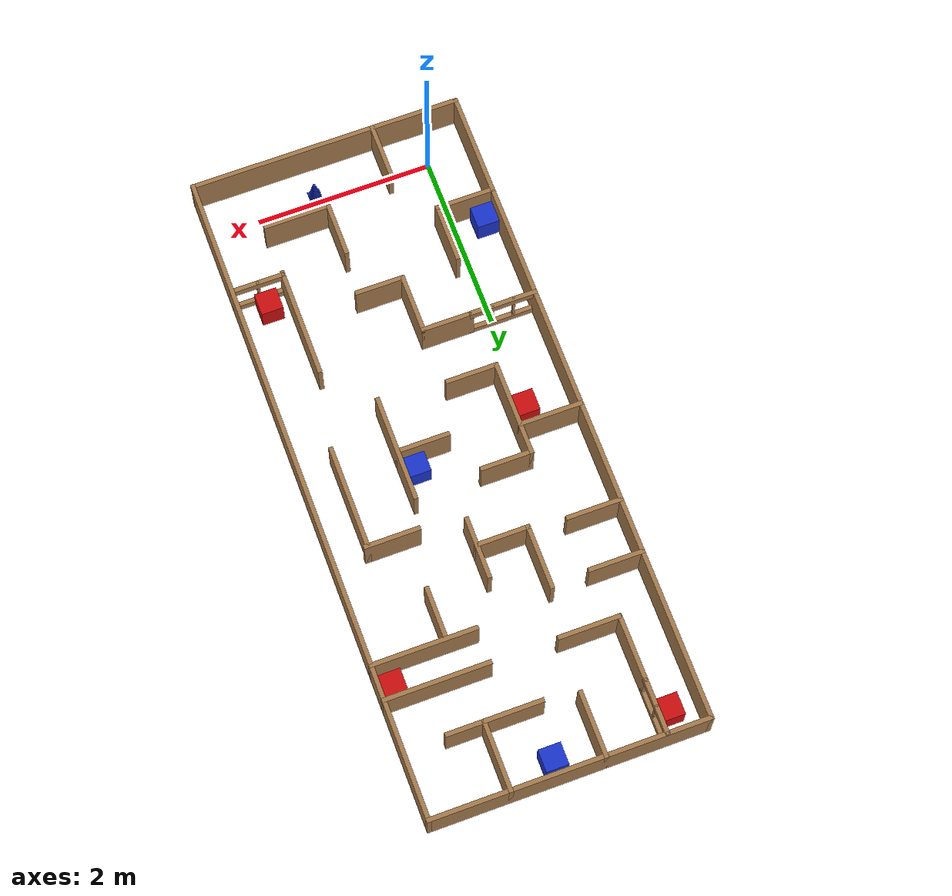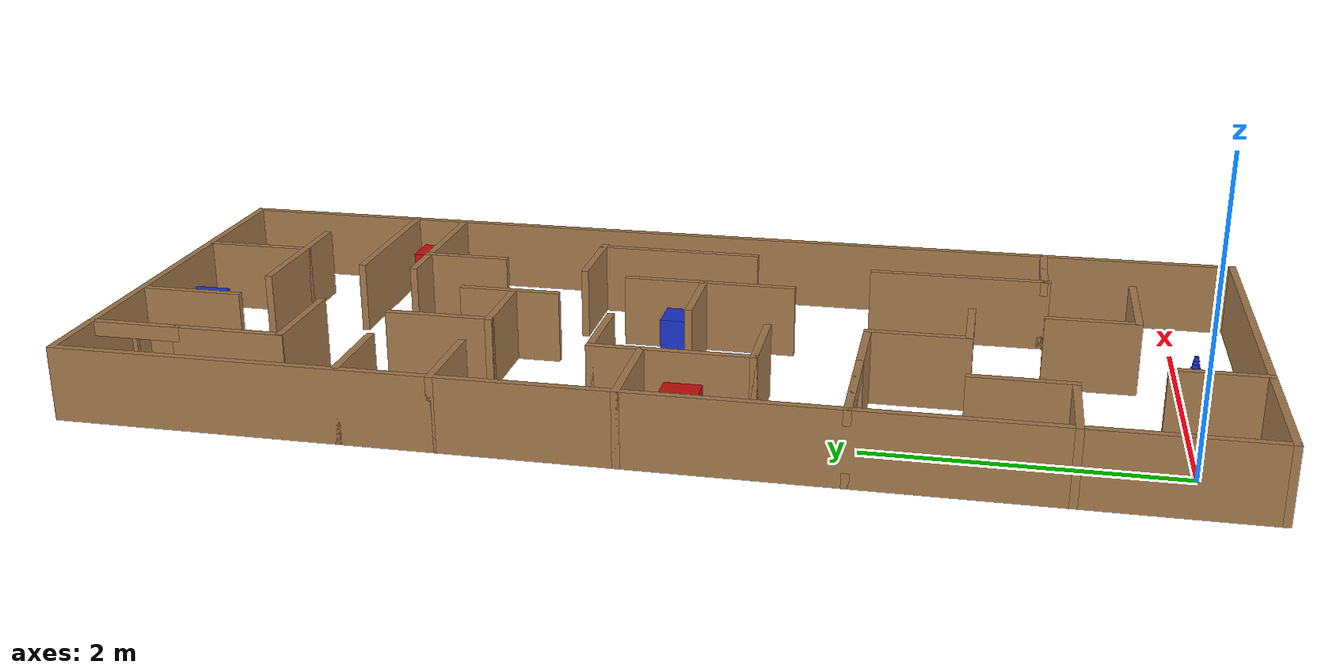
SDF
<sdf version="1.5">
 <world name="tars_qualy_real">
  <include><uri>model://sun</uri></include>
  <model name="paredes_borde">
   <static>true</static>
   <link name="pared_1">
    <pose>1.0500 -0.4300 0.2500 0 0 0</pose>
    <collision name="collision"><geometry><box><size>3.1100 0.0500 0.5000</size></box></geometry></collision>
    <visual name="visual">
     <geometry><box><size>3.1100 0.0500 0.5000</size></box></geometry>
     <material><ambient>0.65 0.48 0.3 1</ambient><diffuse>0.65 0.48 0.3 1</diffuse></material>
    </visual>
   </link>
   <link name="pared_2">
    <pose>1.0500 7.0500 0.2500 0 0 0</pose>
    <collision name="collision"><geometry><box><size>3.1100 0.0500 0.5000</size></box></geometry></collision>
    <visual name="visual">
     <geometry><box><size>3.1100 0.0500 0.5000</size></box></geometry>
     <material><ambient>0.65 0.48 0.3 1</ambient><diffuse>0.65 0.48 0.3 1</diffuse></material>
    </visual>
   </link>
   <link name="pared_3">
    <pose>-0.4800 3.3100 0.2500 0 0 0</pose>
    <collision name="collision"><geometry><box><size>0.0500 7.5300 0.5000</size></box></geometry></collision>
    <visual name="visual">
     <geometry><box><size>0.0500 7.5300 0.5000</size></box></geometry>
     <material><ambient>0.65 0.48 0.3 1</ambient><diffuse>0.65 0.48 0.3 1</diffuse></material>
    </visual>
   </link>
   <link name="pared_4">
    <pose>2.5800 3.3100 0.2500 0 0 0</pose>
    <collision name="collision"><geometry><box><size>0.0500 7.5300 0.5000</size></box></geometry></collision>
    <visual name="visual">
     <geometry><box><size>0.0500 7.5300 0.5000</size></box></geometry>
     <material><ambient>0.65 0.48 0.3 1</ambient><diffuse>0.65 0.48 0.3 1</diffuse></material>
    </visual>
   </link>
   <link name="pared_5">
    <pose>0.5000 -0.1400 0.2500 0 0 0</pose>
    <collision name="collision"><geometry><box><size>0.0500 0.6300 0.5000</size></box></geometry></collision>
    <visual name="visual">
     <geometry><box><size>0.0500 0.6300 0.5000</size></box></geometry>
     <material><ambient>0.65 0.48 0.3 1</ambient><diffuse>0.65 0.48 0.3 1</diffuse></material>
    </visual>
   </link>
   <link name="pared_6">
    <pose>1.2700 0.5900 0.2500 0 0 0</pose>
    <collision name="collision"><geometry><box><size>0.0500 0.6300 0.5000</size></box></geometry></collision>
    <visual name="visual">
     <geometry><box><size>0.0500 0.6300 0.5000</size></box></geometry>
     <material><ambient>0.65 0.48 0.3 1</ambient><diffuse>0.65 0.48 0.3 1</diffuse></material>
    </visual>
   </link>
   <link name="pared_7">
    <pose>1.6300 0.3000 0.2500 0 0 0</pose>
    <collision name="collision"><geometry><box><size>0.7700 0.0500 0.5000</size></box></geometry></collision>
    <visual name="visual">
     <geometry><box><size>0.7700 0.0500 0.5000</size></box></geometry>
     <material><ambient>0.65 0.48 0.3 1</ambient><diffuse>0.65 0.48 0.3 1</diffuse></material>
    </visual>
   </link>
   <link name="pared_8">
    <pose>2.0000 1.4850 0.2500 0 0 0</pose>
    <collision name="collision"><geometry><box><size>0.0500 1.2600 0.5000</size></box></geometry></collision>
    <visual name="visual">
     <geometry><box><size>0.0500 1.2600 0.5000</size></box></geometry>
     <material><ambient>0.65 0.48 0.3 1</ambient><diffuse>0.65 0.48 0.3 1</diffuse></material>
    </visual>
   </link>
   <link name="pared_9_zocalo">
    <pose>2.2900 0.9000 0.0500 0 0 0</pose>
    <collision name="collision"><geometry><box><size>0.6300 0.0500 0.1000</size></box></geometry></collision>
    <visual name="visual">
     <geometry><box><size>0.6300 0.0500 0.1000</size></box></geometry>
     <material><ambient>0.65 0.48 0.3 1</ambient><diffuse>0.65 0.48 0.3 1</diffuse></material>
    </visual>
   </link>
   <link name="pared_10_poste">
    <pose>2.0000 0.9000 0.2500 0 0 0</pose>
    <collision name="collision"><geometry><box><size>0.0300 0.0300 0.5000</size></box></geometry></collision>
    <visual name="visual">
     <geometry><box><size>0.0300 0.0300 0.5000</size></box></geometry>
     <material><ambient>0.65 0.48 0.3 1</ambient><diffuse>0.65 0.48 0.3 1</diffuse></material>
    </visual>
   </link>
   <link name="pared_11_poste">
    <pose>2.2900 0.9000 0.2500 0 0 0</pose>
    <collision name="collision"><geometry><box><size>0.0300 0.0300 0.5000</size></box></geometry></collision>
    <visual name="visual">
     <geometry><box><size>0.0300 0.0300 0.5000</size></box></geometry>
     <material><ambient>0.65 0.48 0.3 1</ambient><diffuse>0.65 0.48 0.3 1</diffuse></material>
    </visual>
   </link>
   <link name="pared_12_poste">
    <pose>2.5800 0.9000 0.2500 0 0 0</pose>
    <collision name="collision"><geometry><box><size>0.0300 0.0300 0.5000</size></box></geometry></collision>
    <visual name="visual">
     <geometry><box><size>0.0300 0.0300 0.5000</size></box></geometry>
     <material><ambient>0.65 0.48 0.3 1</ambient><diffuse>0.65 0.48 0.3 1</diffuse></material>
    </visual>
   </link>
   <link name="pared_13_dintel">
    <pose>2.2900 0.9000 0.4500 0 0 0</pose>
    <collision name="collision"><geometry><box><size>0.6300 0.0500 0.1000</size></box></geometry></collision>
    <visual name="visual">
     <geometry><box><size>0.6300 0.0500 0.1000</size></box></geometry>
     <material><ambient>0.65 0.48 0.3 1</ambient><diffuse>0.65 0.48 0.3 1</diffuse></material>
    </visual>
   </link>
   <link name="pared_14">
    <pose>-0.1600 0.7300 0.2500 0 0 0</pose>
    <collision name="collision"><geometry><box><size>0.6900 0.0500 0.5000</size></box></geometry></collision>
    <visual name="visual">
     <geometry><box><size>0.6900 0.0500 0.5000</size></box></geometry>
     <material><ambient>0.65 0.48 0.3 1</ambient><diffuse>0.65 0.48 0.3 1</diffuse></material>
    </visual>
   </link>
   <link name="pared_15">
    <pose>0.1600 1.0450 0.2500 0 0 0</pose>
    <collision name="collision"><geometry><box><size>0.0500 0.6800 0.5000</size></box></geometry></collision>
    <visual name="visual">
     <geometry><box><size>0.0500 0.6800 0.5000</size></box></geometry>
     <material><ambient>0.65 0.48 0.3 1</ambient><diffuse>0.65 0.48 0.3 1</diffuse></material>
    </visual>
   </link>
   <link name="pared_16_zocalo">
    <pose>-0.1150 2.0300 0.0500 0 0 0</pose>
    <collision name="collision"><geometry><box><size>0.7800 0.0500 0.1000</size></box></geometry></collision>
    <visual name="visual">
     <geometry><box><size>0.7800 0.0500 0.1000</size></box></geometry>
     <material><ambient>0.65 0.48 0.3 1</ambient><diffuse>0.65 0.48 0.3 1</diffuse></material>
    </visual>
   </link>
   <link name="pared_17_poste">
    <pose>-0.4800 2.0300 0.2500 0 0 0</pose>
    <collision name="collision"><geometry><box><size>0.0300 0.0300 0.5000</size></box></geometry></collision>
    <visual name="visual">
     <geometry><box><size>0.0300 0.0300 0.5000</size></box></geometry>
     <material><ambient>0.65 0.48 0.3 1</ambient><diffuse>0.65 0.48 0.3 1</diffuse></material>
    </visual>
   </link>
   <link name="pared_18_poste">
    <pose>-0.2367 2.0300 0.2500 0 0 0</pose>
    <collision name="collision"><geometry><box><size>0.0300 0.0300 0.5000</size></box></geometry></collision>
    <visual name="visual">
     <geometry><box><size>0.0300 0.0300 0.5000</size></box></geometry>
     <material><ambient>0.65 0.48 0.3 1</ambient><diffuse>0.65 0.48 0.3 1</diffuse></material>
    </visual>
   </link>
   <link name="pared_19_poste">
    <pose>0.0067 2.0300 0.2500 0 0 0</pose>
    <collision name="collision"><geometry><box><size>0.0300 0.0300 0.5000</size></box></geometry></collision>
    <visual name="visual">
     <geometry><box><size>0.0300 0.0300 0.5000</size></box></geometry>
     <material><ambient>0.65 0.48 0.3 1</ambient><diffuse>0.65 0.48 0.3 1</diffuse></material>
    </visual>
   </link>
   <link name="pared_20_poste">
    <pose>0.2500 2.0300 0.2500 0 0 0</pose>
    <collision name="collision"><geometry><box><size>0.0300 0.0300 0.5000</size></box></geometry></collision>
    <visual name="visual">
     <geometry><box><size>0.0300 0.0300 0.5000</size></box></geometry>
     <material><ambient>0.65 0.48 0.3 1</ambient><diffuse>0.65 0.48 0.3 1</diffuse></material>
    </visual>
   </link>
   <link name="pared_21_dintel">
    <pose>-0.1150 2.0300 0.4500 0 0 0</pose>
    <collision name="collision"><geometry><box><size>0.7800 0.0500 0.1000</size></box></geometry></collision>
    <visual name="visual">
     <geometry><box><size>0.7800 0.0500 0.1000</size></box></geometry>
     <material><ambient>0.65 0.48 0.3 1</ambient><diffuse>0.65 0.48 0.3 1</diffuse></material>
    </visual>
   </link>
   <link name="pared_22">
    <pose>0.5250 2.0300 0.2500 0 0 0</pose>
    <collision name="collision"><geometry><box><size>0.6000 0.0500 0.5000</size></box></geometry></collision>
    <visual name="visual">
     <geometry><box><size>0.6000 0.0500 0.5000</size></box></geometry>
     <material><ambient>0.65 0.48 0.3 1</ambient><diffuse>0.65 0.48 0.3 1</diffuse></material>
    </visual>
   </link>
   <link name="pared_23">
    <pose>0.8000 1.7050 0.2500 0 0 0</pose>
    <collision name="collision"><geometry><box><size>0.0500 0.7000 0.5000</size></box></geometry></collision>
    <visual name="visual">
     <geometry><box><size>0.0500 0.7000 0.5000</size></box></geometry>
     <material><ambient>0.65 0.48 0.3 1</ambient><diffuse>0.65 0.48 0.3 1</diffuse></material>
    </visual>
   </link>
   <link name="pared_24">
    <pose>1.0600 1.3800 0.2500 0 0 0</pose>
    <collision name="collision"><geometry><box><size>0.5700 0.0500 0.5000</size></box></geometry></collision>
    <visual name="visual">
     <geometry><box><size>0.5700 0.0500 0.5000</size></box></geometry>
     <material><ambient>0.65 0.48 0.3 1</ambient><diffuse>0.65 0.48 0.3 1</diffuse></material>
    </visual>
   </link>
   <link name="pared_25">
    <pose>0.2100 3.2050 0.2500 0 0 0</pose>
    <collision name="collision"><geometry><box><size>0.0500 1.1000 0.5000</size></box></geometry></collision>
    <visual name="visual">
     <geometry><box><size>0.0500 1.1000 0.5000</size></box></geometry>
     <material><ambient>0.65 0.48 0.3 1</ambient><diffuse>0.65 0.48 0.3 1</diffuse></material>
    </visual>
   </link>
   <link name="pared_26">
    <pose>0.4850 3.7300 0.2500 0 0 0</pose>
    <collision name="collision"><geometry><box><size>0.6000 0.0500 0.5000</size></box></geometry></collision>
    <visual name="visual">
     <geometry><box><size>0.6000 0.0500 0.5000</size></box></geometry>
     <material><ambient>0.65 0.48 0.3 1</ambient><diffuse>0.65 0.48 0.3 1</diffuse></material>
    </visual>
   </link>
   <link name="pared_27">
    <pose>0.4850 2.6800 0.2500 0 0 0</pose>
    <collision name="collision"><geometry><box><size>0.6000 0.0500 0.5000</size></box></geometry></collision>
    <visual name="visual">
     <geometry><box><size>0.6000 0.0500 0.5000</size></box></geometry>
     <material><ambient>0.65 0.48 0.3 1</ambient><diffuse>0.65 0.48 0.3 1</diffuse></material>
    </visual>
   </link>
   <link name="pared_28">
    <pose>1.5300 3.2000 0.2500 0 0 0</pose>
    <collision name="collision"><geometry><box><size>0.0500 1.2100 0.5000</size></box></geometry></collision>
    <visual name="visual">
     <geometry><box><size>0.0500 1.2100 0.5000</size></box></geometry>
     <material><ambient>0.65 0.48 0.3 1</ambient><diffuse>0.65 0.48 0.3 1</diffuse></material>
    </visual>
   </link>
   <link name="pared_29">
    <pose>1.2500 3.2400 0.2500 0 0 0</pose>
    <collision name="collision"><geometry><box><size>0.6100 0.0500 0.5000</size></box></geometry></collision>
    <visual name="visual">
     <geometry><box><size>0.6100 0.0500 0.5000</size></box></geometry>
     <material><ambient>0.65 0.48 0.3 1</ambient><diffuse>0.65 0.48 0.3 1</diffuse></material>
    </visual>
   </link>
   <link name="pared_30">
    <pose>1.9100 4.1200 0.2500 0 0 0</pose>
    <collision name="collision"><geometry><box><size>0.6300 0.0500 0.5000</size></box></geometry></collision>
    <visual name="visual">
     <geometry><box><size>0.6300 0.0500 0.5000</size></box></geometry>
     <material><ambient>0.65 0.48 0.3 1</ambient><diffuse>0.65 0.48 0.3 1</diffuse></material>
    </visual>
   </link>
   <link name="pared_31">
    <pose>2.1800 3.5500 0.2500 0 0 0</pose>
    <collision name="collision"><geometry><box><size>0.0500 1.1900 0.5000</size></box></geometry></collision>
    <visual name="visual">
     <geometry><box><size>0.0500 1.1900 0.5000</size></box></geometry>
     <material><ambient>0.65 0.48 0.3 1</ambient><diffuse>0.65 0.48 0.3 1</diffuse></material>
    </visual>
   </link>
   <link name="pared_32">
    <pose>-0.1850 4.5500 0.2500 0 0 0</pose>
    <collision name="collision"><geometry><box><size>0.6400 0.0500 0.5000</size></box></geometry></collision>
    <visual name="visual">
     <geometry><box><size>0.6400 0.0500 0.5000</size></box></geometry>
     <material><ambient>0.65 0.48 0.3 1</ambient><diffuse>0.65 0.48 0.3 1</diffuse></material>
    </visual>
   </link>
   <link name="pared_33">
    <pose>0.5400 4.8450 0.2500 0 0 0</pose>
    <collision name="collision"><geometry><box><size>0.0500 0.7400 0.5000</size></box></geometry></collision>
    <visual name="visual">
     <geometry><box><size>0.0500 0.7400 0.5000</size></box></geometry>
     <material><ambient>0.65 0.48 0.3 1</ambient><diffuse>0.65 0.48 0.3 1</diffuse></material>
    </visual>
   </link>
   <link name="pared_34">
    <pose>1.1100 4.5300 0.2500 0 0 0</pose>
    <collision name="collision"><geometry><box><size>0.0500 0.7100 0.5000</size></box></geometry></collision>
    <visual name="visual">
     <geometry><box><size>0.0500 0.7100 0.5000</size></box></geometry>
     <material><ambient>0.65 0.48 0.3 1</ambient><diffuse>0.65 0.48 0.3 1</diffuse></material>
    </visual>
   </link>
   <link name="pared_35">
    <pose>0.8250 4.5000 0.2500 0 0 0</pose>
    <collision name="collision"><geometry><box><size>0.6200 0.0500 0.5000</size></box></geometry></collision>
    <visual name="visual">
     <geometry><box><size>0.6200 0.0500 0.5000</size></box></geometry>
     <material><ambient>0.65 0.48 0.3 1</ambient><diffuse>0.65 0.48 0.3 1</diffuse></material>
    </visual>
   </link>
   <link name="pared_36">
    <pose>-0.1900 5.1600 0.2500 0 0 0</pose>
    <collision name="collision"><geometry><box><size>0.6300 0.0500 0.5000</size></box></geometry></collision>
    <visual name="visual">
     <geometry><box><size>0.6300 0.0500 0.5000</size></box></geometry>
     <material><ambient>0.65 0.48 0.3 1</ambient><diffuse>0.65 0.48 0.3 1</diffuse></material>
    </visual>
   </link>
   <link name="pared_37">
    <pose>0.3350 5.7300 0.2500 0 0 0</pose>
    <collision name="collision"><geometry><box><size>0.7000 0.0500 0.5000</size></box></geometry></collision>
    <visual name="visual">
     <geometry><box><size>0.7000 0.0500 0.5000</size></box></geometry>
     <material><ambient>0.65 0.48 0.3 1</ambient><diffuse>0.65 0.48 0.3 1</diffuse></material>
    </visual>
   </link>
   <link name="pared_38">
    <pose>0.6700 6.7000 0.2500 0 0 0</pose>
    <collision name="collision"><geometry><box><size>0.0500 0.7500 0.5000</size></box></geometry></collision>
    <visual name="visual">
     <geometry><box><size>0.0500 0.7500 0.5000</size></box></geometry>
     <material><ambient>0.65 0.48 0.3 1</ambient><diffuse>0.65 0.48 0.3 1</diffuse></material>
    </visual>
   </link>
   <link name="pared_39">
    <pose>1.5850 6.2900 0.2500 0 0 0</pose>
    <collision name="collision"><geometry><box><size>1.0800 0.0500 0.5000</size></box></geometry></collision>
    <visual name="visual">
     <geometry><box><size>1.0800 0.0500 0.5000</size></box></geometry>
     <material><ambient>0.65 0.48 0.3 1</ambient><diffuse>0.65 0.48 0.3 1</diffuse></material>
    </visual>
   </link>
   <link name="pared_40">
    <pose>1.7000 6.6700 0.2500 0 0 0</pose>
    <collision name="collision"><geometry><box><size>0.0500 0.8100 0.5000</size></box></geometry></collision>
    <visual name="visual">
     <geometry><box><size>0.0500 0.8100 0.5000</size></box></geometry>
     <material><ambient>0.65 0.48 0.3 1</ambient><diffuse>0.65 0.48 0.3 1</diffuse></material>
    </visual>
   </link>
   <link name="pared_41">
    <pose>0.0000 6.0900 0.2500 0 0 0</pose>
    <collision name="collision"><geometry><box><size>0.0500 0.7700 0.5000</size></box></geometry></collision>
    <visual name="visual">
     <geometry><box><size>0.0500 0.7700 0.5000</size></box></geometry>
     <material><ambient>0.65 0.48 0.3 1</ambient><diffuse>0.65 0.48 0.3 1</diffuse></material>
    </visual>
   </link>
   <link name="pared_42_zocalo">
    <pose>0.0000 6.7500 0.0500 0 0 0</pose>
    <collision name="collision"><geometry><box><size>0.0500 0.6500 0.1000</size></box></geometry></collision>
    <visual name="visual">
     <geometry><box><size>0.0500 0.6500 0.1000</size></box></geometry>
     <material><ambient>0.65 0.48 0.3 1</ambient><diffuse>0.65 0.48 0.3 1</diffuse></material>
    </visual>
   </link>
   <link name="pared_43_poste">
    <pose>0.0000 6.4500 0.2500 0 0 0</pose>
    <collision name="collision"><geometry><box><size>0.0300 0.0300 0.5000</size></box></geometry></collision>
    <visual name="visual">
     <geometry><box><size>0.0300 0.0300 0.5000</size></box></geometry>
     <material><ambient>0.65 0.48 0.3 1</ambient><diffuse>0.65 0.48 0.3 1</diffuse></material>
    </visual>
   </link>
   <link name="pared_44_poste">
    <pose>0.0000 6.7500 0.2500 0 0 0</pose>
    <collision name="collision"><geometry><box><size>0.0300 0.0300 0.5000</size></box></geometry></collision>
    <visual name="visual">
     <geometry><box><size>0.0300 0.0300 0.5000</size></box></geometry>
     <material><ambient>0.65 0.48 0.3 1</ambient><diffuse>0.65 0.48 0.3 1</diffuse></material>
    </visual>
   </link>
   <link name="pared_45_poste">
    <pose>0.0000 7.0500 0.2500 0 0 0</pose>
    <collision name="collision"><geometry><box><size>0.0300 0.0300 0.5000</size></box></geometry></collision>
    <visual name="visual">
     <geometry><box><size>0.0300 0.0300 0.5000</size></box></geometry>
     <material><ambient>0.65 0.48 0.3 1</ambient><diffuse>0.65 0.48 0.3 1</diffuse></material>
    </visual>
   </link>
   <link name="pared_46_dintel">
    <pose>0.0000 6.7500 0.4500 0 0 0</pose>
    <collision name="collision"><geometry><box><size>0.0500 0.6500 0.1000</size></box></geometry></collision>
    <visual name="visual">
     <geometry><box><size>0.0500 0.6500 0.1000</size></box></geometry>
     <material><ambient>0.65 0.48 0.3 1</ambient><diffuse>0.65 0.48 0.3 1</diffuse></material>
    </visual>
   </link>
   <link name="pared_47">
    <pose>-0.1350 3.4000 0.2500 0 0 0</pose>
    <collision name="collision"><geometry><box><size>0.7400 0.0500 0.5000</size></box></geometry></collision>
    <visual name="visual">
     <geometry><box><size>0.7400 0.0500 0.5000</size></box></geometry>
     <material><ambient>0.65 0.48 0.3 1</ambient><diffuse>0.65 0.48 0.3 1</diffuse></material>
    </visual>
   </link>
   <link name="pared_48">
    <pose>2.0050 5.7300 0.2500 0 0 0</pose>
    <collision name="collision"><geometry><box><size>1.2000 0.0500 0.5000</size></box></geometry></collision>
    <visual name="visual">
     <geometry><box><size>1.2000 0.0500 0.5000</size></box></geometry>
     <material><ambient>0.65 0.48 0.3 1</ambient><diffuse>0.65 0.48 0.3 1</diffuse></material>
    </visual>
   </link>
   <link name="pared_49">
    <pose>2.0050 5.3400 0.2500 0 0 0</pose>
    <collision name="collision"><geometry><box><size>1.2000 0.0500 0.5000</size></box></geometry></collision>
    <visual name="visual">
     <geometry><box><size>1.2000 0.0500 0.5000</size></box></geometry>
     <material><ambient>0.65 0.48 0.3 1</ambient><diffuse>0.65 0.48 0.3 1</diffuse></material>
    </visual>
   </link>
   <link name="pared_50">
    <pose>1.7600 5.0550 0.2500 0 0 0</pose>
    <collision name="collision"><geometry><box><size>0.0500 0.6200 0.5000</size></box></geometry></collision>
    <visual name="visual">
     <geometry><box><size>0.0500 0.6200 0.5000</size></box></geometry>
     <material><ambient>0.65 0.48 0.3 1</ambient><diffuse>0.65 0.48 0.3 1</diffuse></material>
    </visual>
   </link>
  </model>
  <model name="marcas_color">
   <static>true</static>
   <link name="cuadrado_rojo_1">
    <pose>2.230 1.060 .15 0 0 0</pose>
    <collision name="collision"><geometry><box><size>0.25 0.25 0.3</size></box></geometry></collision>
    <visual name="visual">
     <geometry><box><size>0.25 0.25 0.3</size></box></geometry>
     <material>
      <ambient>0.8 0.05 0.05 1</ambient>
      <diffuse>0.8 0.05 0.05 1</diffuse>
      <specular>0.1 0.1 0.1 1</specular>
     </material>
    </visual>
   </link>
   <link name="cuadrado_rojo_2">
    <pose>0.040 3.120 .15 0 0 0</pose>
    <collision name="collision"><geometry><box><size>0.25 0.25 0.3</size></box></geometry></collision>
    <visual name="visual">
     <geometry><box><size>0.25 0.25 0.3</size></box></geometry>
     <material>
      <ambient>0.8 0.05 0.05 1</ambient>
      <diffuse>0.8 0.05 0.05 1</diffuse>
      <specular>0.1 0.1 0.1 1</specular>
     </material>
    </visual>
   </link>
   <link name="cuadrado_rojo_3">
    <pose>-0.160 6.760 .15 0 0 0</pose>
    <collision name="collision"><geometry><box><size>0.25 0.25 0.3</size></box></geometry></collision>
    <visual name="visual">
     <geometry><box><size>0.25 0.25 0.3</size></box></geometry>
     <material>
      <ambient>0.8 0.05 0.05 1</ambient>
      <diffuse>0.8 0.05 0.05 1</diffuse>
      <specular>0.1 0.1 0.1 1</specular>
     </material>
    </visual>
   </link>
   <link name="cuadrado_rojo_4">
    <pose>2.420 5.540 .15 0 0 0</pose>
    <collision name="collision"><geometry><box><size>0.25 0.25 0.3</size></box></geometry></collision>
    <visual name="visual">
     <geometry><box><size>0.25 0.25 0.3</size></box></geometry>
     <material>
      <ambient>0.8 0.05 0.05 1</ambient>
      <diffuse>0.8 0.05 0.05 1</diffuse>
      <specular>0.1 0.1 0.1 1</specular>
     </material>
    </visual>
   </link>
   <link name="cuadrado_azul_1">
    <pose>-0.330 0.900 .15 0 0 0</pose>
    <collision name="collision"><geometry><box><size>0.25 0.25 0.3</size></box></geometry></collision>
    <visual name="visual">
     <geometry><box><size>0.25 0.25 0.3</size></box></geometry>
     <material>
      <ambient>0.1 0.2 0.8 1</ambient>
      <diffuse>0.1 0.2 0.8 1</diffuse>
      <specular>0.1 0.1 0.1 1</specular>
     </material>
    </visual>
   </link>
   <link name="cuadrado_azul_2">
    <pose>1.370 3.370 .15 0 0 0</pose>
    <collision name="collision"><geometry><box><size>0.25 0.25 0.3</size></box></geometry></collision>
    <visual name="visual">
     <geometry><box><size>0.25 0.25 0.3</size></box></geometry>
     <material>
      <ambient>0.1 0.2 0.8 1</ambient>
      <diffuse>0.1 0.2 0.8 1</diffuse>
      <specular>0.1 0.1 0.1 1</specular>
     </material>
    </visual>
   </link>
   <link name="cuadrado_azul_3">
    <pose>1.150 6.840 .15 0 0 0</pose>
    <collision name="collision"><geometry><box><size>0.25 0.25 0.3</size></box></geometry></collision>
    <visual name="visual">
     <geometry><box><size>0.25 0.25 0.3</size></box></geometry>
     <material>
      <ambient>0.1 0.2 0.8 1</ambient>
      <diffuse>0.1 0.2 0.8 1</diffuse>
      <specular>0.1 0.1 0.1 1</specular>
     </material>
    </visual>
   </link>
  </model>
  <model name="senuelo_cono_1">
   <static>1</static>
   <pose>1.310 -0.090 0 0 0 0</pose>
   <link name="senuelo_cono_1">
    <collision name="c0">
     <pose>0 0 0.0025 0 0 0</pose>
     <geometry><box><size>0.14 0.14 0.005</size></box></geometry>
    </collision>
    <visual name="v0">
     <pose>0 0 0.0025 0 0 0</pose>
     <geometry><box><size>0.14 0.14 0.005</size></box></geometry>
     <material>
      <ambient>0.10 0.20 0.80 1</ambient>
      <diffuse>0.10 0.20 0.80 1</diffuse>
      <specular>0.1 0.1 0.1 1</specular>
     </material>
    </visual>
    <collision name="c1">
     <pose>0 0 0.0175 0 0 0</pose>
     <geometry><cylinder><radius>0.0674</radius><length>0.0250</length></cylinder></geometry>
    </collision>
    <visual name="v1">
     <pose>0 0 0.0175 0 0 0</pose>
     <geometry><cylinder><radius>0.0674</radius><length>0.0250</length></cylinder></geometry>
     <material>
      <ambient>0.10 0.20 0.80 1</ambient>
      <diffuse>0.10 0.20 0.80 1</diffuse>
      <specular>0.1 0.1 0.1 1</specular>
     </material>
    </visual>
    <collision name="c2">
     <pose>0 0 0.0425 0 0 0</pose>
     <geometry><cylinder><radius>0.0622</radius><length>0.0250</length></cylinder></geometry>
    </collision>
    <visual name="v2">
     <pose>0 0 0.0425 0 0 0</pose>
     <geometry><cylinder><radius>0.0622</radius><length>0.0250</length></cylinder></geometry>
     <material>
      <ambient>0.10 0.20 0.80 1</ambient>
      <diffuse>0.10 0.20 0.80 1</diffuse>
      <specular>0.1 0.1 0.1 1</specular>
     </material>
    </visual>
    <collision name="c3">
     <pose>0 0 0.0675 0 0 0</pose>
     <geometry><cylinder><radius>0.0569</radius><length>0.0250</length></cylinder></geometry>
    </collision>
    <visual name="v3">
     <pose>0 0 0.0675 0 0 0</pose>
     <geometry><cylinder><radius>0.0569</radius><length>0.0250</length></cylinder></geometry>
     <material>
      <ambient>0.10 0.20 0.80 1</ambient>
      <diffuse>0.10 0.20 0.80 1</diffuse>
      <specular>0.1 0.1 0.1 1</specular>
     </material>
    </visual>
    <collision name="c4">
     <pose>0 0 0.0925 0 0 0</pose>
     <geometry><cylinder><radius>0.0517</radius><length>0.0250</length></cylinder></geometry>
    </collision>
    <visual name="v4">
     <pose>0 0 0.0925 0 0 0</pose>
     <geometry><cylinder><radius>0.0517</radius><length>0.0250</length></cylinder></geometry>
     <material>
      <ambient>0.10 0.20 0.80 1</ambient>
      <diffuse>0.10 0.20 0.80 1</diffuse>
      <specular>0.1 0.1 0.1 1</specular>
     </material>
    </visual>
    <collision name="c5">
     <pose>0 0 0.1175 0 0 0</pose>
     <geometry><cylinder><radius>0.0465</radius><length>0.0250</length></cylinder></geometry>
    </collision>
    <visual name="v5">
     <pose>0 0 0.1175 0 0 0</pose>
     <geometry><cylinder><radius>0.0465</radius><length>0.0250</length></cylinder></geometry>
     <material>
      <ambient>0.10 0.20 0.80 1</ambient>
      <diffuse>0.10 0.20 0.80 1</diffuse>
      <specular>0.1 0.1 0.1 1</specular>
     </material>
    </visual>
    <collision name="c6">
     <pose>0 0 0.1425 0 0 0</pose>
     <geometry><cylinder><radius>0.0413</radius><length>0.0250</length></cylinder></geometry>
    </collision>
    <visual name="v6">
     <pose>0 0 0.1425 0 0 0</pose>
     <geometry><cylinder><radius>0.0413</radius><length>0.0250</length></cylinder></geometry>
     <material>
      <ambient>0.10 0.20 0.80 1</ambient>
      <diffuse>0.10 0.20 0.80 1</diffuse>
      <specular>0.1 0.1 0.1 1</specular>
     </material>
    </visual>
    <collision name="c7">
     <pose>0 0 0.1675 0 0 0</pose>
     <geometry><cylinder><radius>0.0360</radius><length>0.0250</length></cylinder></geometry>
    </collision>
    <visual name="v7">
     <pose>0 0 0.1675 0 0 0</pose>
     <geometry><cylinder><radius>0.0360</radius><length>0.0250</length></cylinder></geometry>
     <material>
      <ambient>0.10 0.20 0.80 1</ambient>
      <diffuse>0.10 0.20 0.80 1</diffuse>
      <specular>0.1 0.1 0.1 1</specular>
     </material>
    </visual>
    <collision name="c8">
     <pose>0 0 0.1925 0 0 0</pose>
     <geometry><cylinder><radius>0.0308</radius><length>0.0250</length></cylinder></geometry>
    </collision>
    <visual name="v8">
     <pose>0 0 0.1925 0 0 0</pose>
     <geometry><cylinder><radius>0.0308</radius><length>0.0250</length></cylinder></geometry>
     <material>
      <ambient>0.10 0.20 0.80 1</ambient>
      <diffuse>0.10 0.20 0.80 1</diffuse>
      <specular>0.1 0.1 0.1 1</specular>
     </material>
    </visual>
    <collision name="c9">
     <pose>0 0 0.2175 0 0 0</pose>
     <geometry><cylinder><radius>0.0256</radius><length>0.0250</length></cylinder></geometry>
    </collision>
    <visual name="v9">
     <pose>0 0 0.2175 0 0 0</pose>
     <geometry><cylinder><radius>0.0256</radius><length>0.0250</length></cylinder></geometry>
     <material>
      <ambient>0.10 0.20 0.80 1</ambient>
      <diffuse>0.10 0.20 0.80 1</diffuse>
      <specular>0.1 0.1 0.1 1</specular>
     </material>
    </visual>
    <collision name="c10">
     <pose>0 0 0.2425 0 0 0</pose>
     <geometry><cylinder><radius>0.0203</radius><length>0.0250</length></cylinder></geometry>
    </collision>
    <visual name="v10">
     <pose>0 0 0.2425 0 0 0</pose>
     <geometry><cylinder><radius>0.0203</radius><length>0.0250</length></cylinder></geometry>
     <material>
      <ambient>0.10 0.20 0.80 1</ambient>
      <diffuse>0.10 0.20 0.80 1</diffuse>
      <specular>0.1 0.1 0.1 1</specular>
     </material>
    </visual>
    <collision name="c11">
     <pose>0 0 0.2675 0 0 0</pose>
     <geometry><cylinder><radius>0.0151</radius><length>0.0250</length></cylinder></geometry>
    </collision>
    <visual name="v11">
     <pose>0 0 0.2675 0 0 0</pose>
     <geometry><cylinder><radius>0.0151</radius><length>0.0250</length></cylinder></geometry>
     <material>
      <ambient>0.10 0.20 0.80 1</ambient>
      <diffuse>0.10 0.20 0.80 1</diffuse>
      <specular>0.1 0.1 0.1 1</specular>
     </material>
    </visual>
   </link>
  </model>
 </world>
</sdf>
